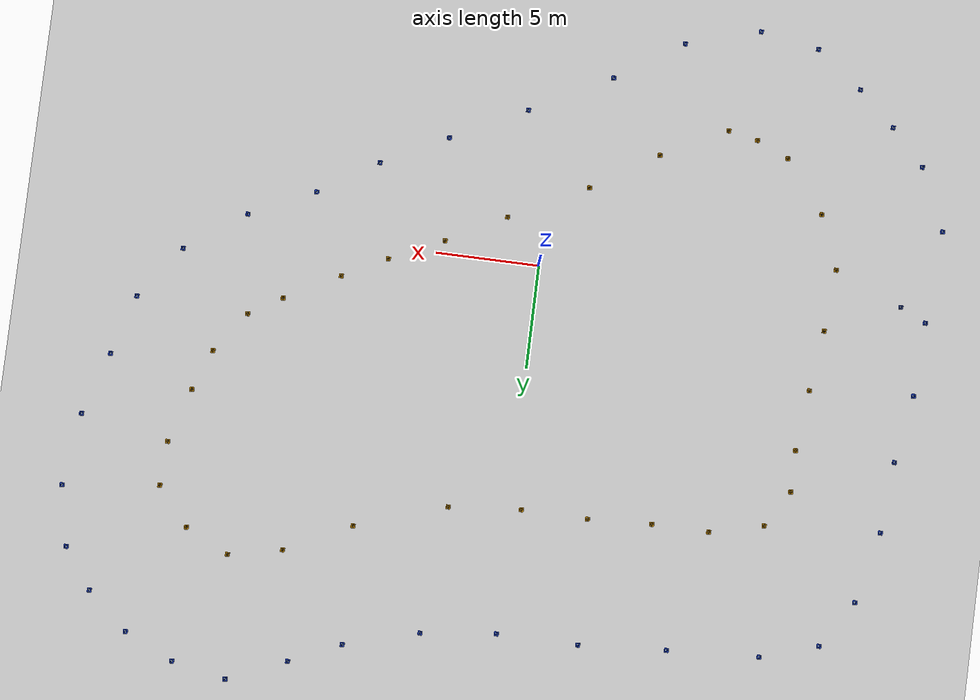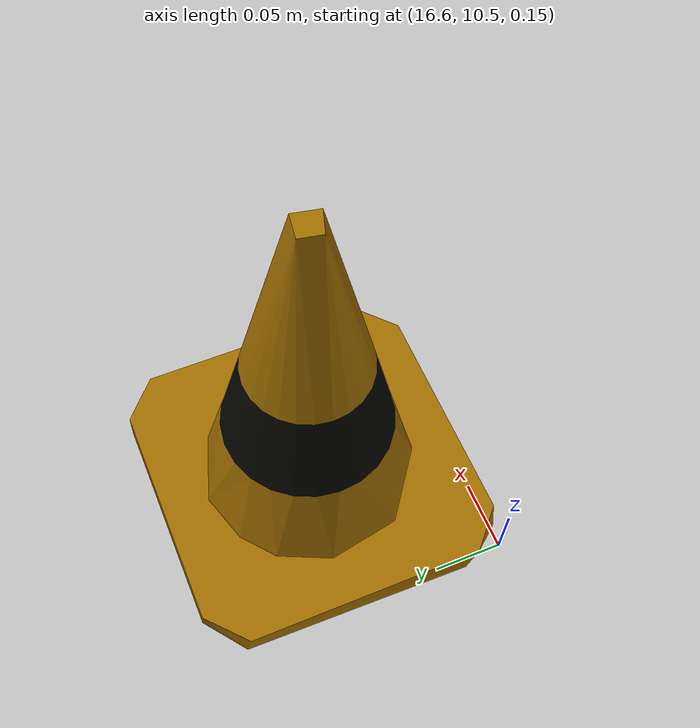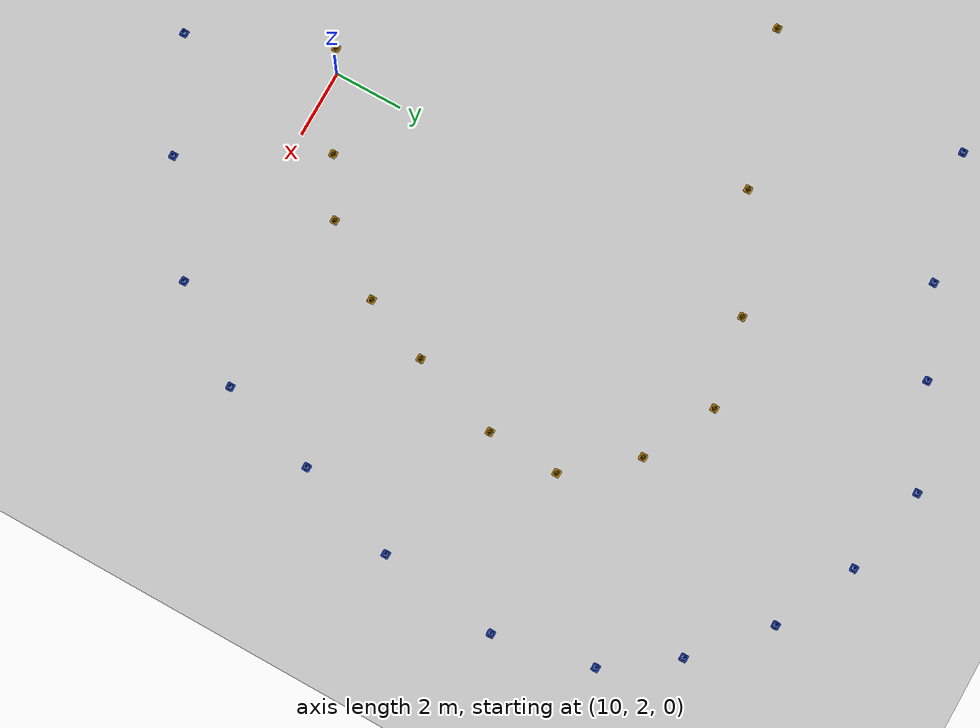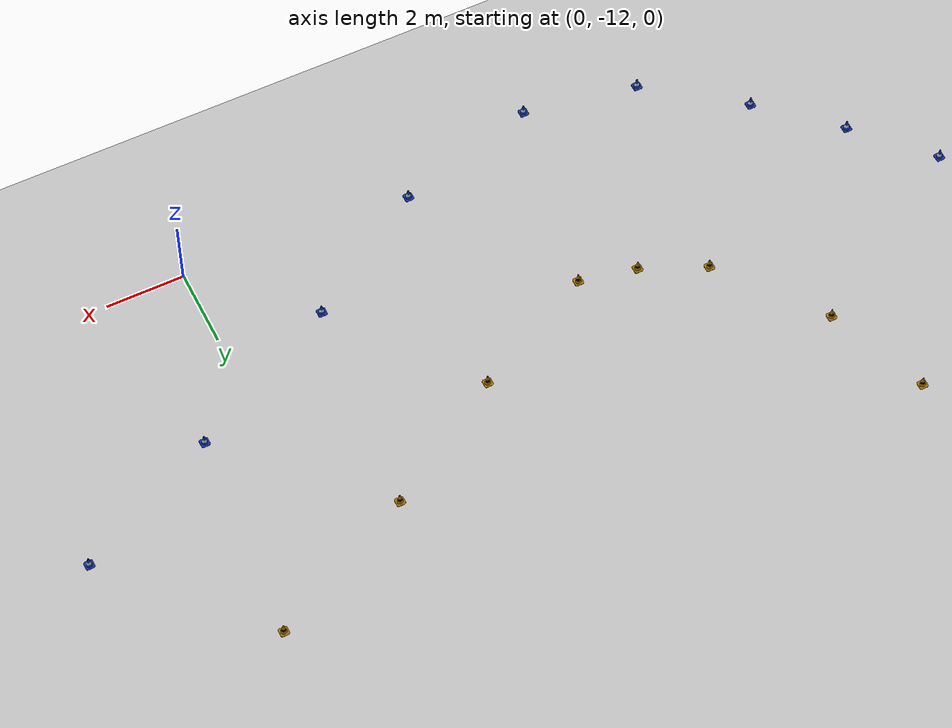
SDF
<sdf version="1.6">
 <world name="default">
  <scene>
   <sky><clouds><speed>3</speed></clouds></sky>
   <ambient>1 1 1 1</ambient>
   <shadows>0</shadows>
   <background>0.7 0.7 0.7 1</background>
  </scene>
  <light name="sun" type="directional">
   <pose>0 0 10 0 -0 0</pose>
   <diffuse>0.8 0.8 0.8 1</diffuse>
   <specular>0.1 0.1 0.1 1</specular>
   <attenuation>
    <range>1000</range>
    <constant>0.9</constant>
    <linear>0.01</linear>
    <quadratic>0.001</quadratic>
   </attenuation>
   <direction>-0.5 0.5 -1</direction>
  </light>
  <model name="ground_plane">
   <static>1</static>
   <link name="link">
    <collision name="collision">
     <geometry><plane><normal>0 0 1</normal><size>120 120</size></plane></geometry>
     <surface><friction><ode><mu>100</mu><mu2>50</mu2></ode></friction></surface>
    </collision>
    <visual name="visual">
     <cast_shadows>0</cast_shadows>
     <geometry><plane><normal>0 0 1</normal><size>120 120</size></plane></geometry>
     <material><script><uri>model://materials/gazebo.material</uri><name>Gazebo/Asphalt</name></script></material>
    </visual>
   </link>
  </model>
  <model name="small_track">
   <link name="link_0">
    <pose>-17.0129 9.72719 0.079001 0 -0 0</pose>
    <collision name="collision">
     <geometry><mesh><uri>model://eufs_description/meshes/cone_blue.dae</uri></mesh></geometry>
    </collision>
    <visual name="visual">
     <geometry><mesh><uri>model://eufs_description/meshes/cone_blue.dae</uri></mesh></geometry>
    </visual>
    <inertial>
     <inertia><ixx>1</ixx><ixy>0</ixy><ixz>0</ixz><iyy>1</iyy><iyz>0</iyz><izz>1</izz></inertia>
     <mass>1</mass>
    </inertial>
   </link>
   <link name="link_0_clone">
    <pose>-12.7541 12.8712 0.079001 0 -0 0</pose>
    <collision name="collision">
     <geometry><mesh><uri>model://eufs_description/meshes/cone_blue.dae</uri></mesh></geometry>
    </collision>
    <visual name="visual">
     <geometry><mesh><uri>model://eufs_description/meshes/cone_blue.dae</uri></mesh></geometry>
    </visual>
    <inertial>
     <inertia><ixx>1</ixx><ixy>0</ixy><ixz>0</ixz><iyy>1</iyy><iyz>0</iyz><izz>1</izz></inertia>
     <mass>1</mass>
    </inertial>
   </link>
   <link name="link_0_clone_0_clone">
    <pose>-12.2686 6.61784 0.070966 -0.001555 0.00019 -5.2e-05</pose>
    <collision name="collision">
     <geometry><mesh><uri>model://eufs_description/meshes/cone_yellow.dae</uri></mesh></geometry>
    </collision>
    <visual name="visual">
     <geometry><mesh><uri>model://eufs_description/meshes/cone_yellow.dae</uri></mesh></geometry>
    </visual>
    <inertial>
     <inertia><ixx>1</ixx><ixy>0</ixy><ixz>0</ixz><iyy>1</iyy><iyz>0</iyz><izz>1</izz></inertia>
     <mass>1</mass>
    </inertial>
   </link>
   <link name="link_0_clone_0_clone_clone">
    <pose>-9.65737 7.2378 0.083534 0.001019 -0.000437 -0.000128</pose>
    <collision name="collision">
     <geometry><mesh><uri>model://eufs_description/meshes/cone_yellow.dae</uri></mesh></geometry>
    </collision>
    <visual name="visual">
     <geometry><mesh><uri>model://eufs_description/meshes/cone_yellow.dae</uri></mesh></geometry>
    </visual>
    <inertial>
     <inertia><ixx>1</ixx><ixy>0</ixy><ixz>0</ixz><iyy>1</iyy><iyz>0</iyz><izz>1</izz></inertia>
     <mass>1</mass>
    </inertial>
   </link>
   <link name="link_0_clone_1">
    <pose>-8.31569 13.0924 0.079001 0 -0 0</pose>
    <collision name="collision">
     <geometry><mesh><uri>model://eufs_description/meshes/cone_blue.dae</uri></mesh></geometry>
    </collision>
    <visual name="visual">
     <geometry><mesh><uri>model://eufs_description/meshes/cone_blue.dae</uri></mesh></geometry>
    </visual>
    <inertial>
     <inertia><ixx>1</ixx><ixy>0</ixy><ixz>0</ixz><iyy>1</iyy><iyz>0</iyz><izz>1</izz></inertia>
     <mass>1</mass>
    </inertial>
   </link>
   <link name="link_0_clone_10">
    <pose>7.33516 9.03961 0.083556 0 -0 0</pose>
    <collision name="collision">
     <geometry><mesh><uri>model://eufs_description/meshes/cone_yellow.dae</uri></mesh></geometry>
    </collision>
    <visual name="visual">
     <geometry><mesh><uri>model://eufs_description/meshes/cone_yellow.dae</uri></mesh></geometry>
    </visual>
    <inertial>
     <inertia><ixx>1</ixx><ixy>0</ixy><ixz>0</ixz><iyy>1</iyy><iyz>0</iyz><izz>1</izz></inertia>
     <mass>1</mass>
    </inertial>
   </link>
   <link name="link_0_clone_11">
    <pose>9.62956 15.8379 0.084236 0 -0 0</pose>
    <collision name="collision">
     <geometry><mesh><uri>model://eufs_description/meshes/cone_blue.dae</uri></mesh></geometry>
    </collision>
    <visual name="visual">
     <geometry><mesh><uri>model://eufs_description/meshes/cone_blue.dae</uri></mesh></geometry>
    </visual>
    <inertial>
     <inertia><ixx>1</ixx><ixy>0</ixy><ixz>0</ixz><iyy>1</iyy><iyz>0</iyz><izz>1</izz></inertia>
     <mass>1</mass>
    </inertial>
   </link>
   <link name="link_0_clone_12">
    <pose>10.548 10.5892 0.085274 0 -0 0</pose>
    <collision name="collision">
     <geometry><mesh><uri>model://eufs_description/meshes/cone_yellow.dae</uri></mesh></geometry>
    </collision>
    <visual name="visual">
     <geometry><mesh><uri>model://eufs_description/meshes/cone_yellow.dae</uri></mesh></geometry>
    </visual>
    <inertial>
     <inertia><ixx>1</ixx><ixy>0</ixy><ixz>0</ixz><iyy>1</iyy><iyz>0</iyz><izz>1</izz></inertia>
     <mass>1</mass>
    </inertial>
   </link>
   <link name="link_0_clone_13">
    <pose>13.1479 11.1316 0.08476 0 -0 0</pose>
    <collision name="collision">
     <geometry><mesh><uri>model://eufs_description/meshes/cone_yellow.dae</uri></mesh></geometry>
    </collision>
    <visual name="visual">
     <geometry><mesh><uri>model://eufs_description/meshes/cone_yellow.dae</uri></mesh></geometry>
    </visual>
    <inertial>
     <inertia><ixx>1</ixx><ixy>0</ixy><ixz>0</ixz><iyy>1</iyy><iyz>0</iyz><izz>1</izz></inertia>
     <mass>1</mass>
    </inertial>
   </link>
   <link name="link_0_clone_14">
    <pose>12.492 17.0404 0.083705 0 -0 0</pose>
    <collision name="collision">
     <geometry><mesh><uri>model://eufs_description/meshes/cone_blue.dae</uri></mesh></geometry>
    </collision>
    <visual name="visual">
     <geometry><mesh><uri>model://eufs_description/meshes/cone_blue.dae</uri></mesh></geometry>
    </visual>
    <inertial>
     <inertia><ixx>1</ixx><ixy>0</ixy><ixz>0</ixz><iyy>1</iyy><iyz>0</iyz><izz>1</izz></inertia>
     <mass>1</mass>
    </inertial>
   </link>
   <link name="link_0_clone_15">
    <pose>15.1389 16.5025 0.082223 0 -0 0</pose>
    <collision name="collision">
     <geometry><mesh><uri>model://eufs_description/meshes/cone_blue.dae</uri></mesh></geometry>
    </collision>
    <visual name="visual">
     <geometry><mesh><uri>model://eufs_description/meshes/cone_blue.dae</uri></mesh></geometry>
    </visual>
    <inertial>
     <inertia><ixx>1</ixx><ixy>0</ixy><ixz>0</ixz><iyy>1</iyy><iyz>0</iyz><izz>1</izz></inertia>
     <mass>1</mass>
    </inertial>
   </link>
   <link name="link_0_clone_16">
    <pose>15.2725 10.0791 0.08035 0 -0 0</pose>
    <collision name="collision">
     <geometry><mesh><uri>model://eufs_description/meshes/cone_yellow.dae</uri></mesh></geometry>
    </collision>
    <visual name="visual">
     <geometry><mesh><uri>model://eufs_description/meshes/cone_yellow.dae</uri></mesh></geometry>
    </visual>
    <inertial>
     <inertia><ixx>1</ixx><ixy>0</ixy><ixz>0</ixz><iyy>1</iyy><iyz>0</iyz><izz>1</izz></inertia>
     <mass>1</mass>
    </inertial>
   </link>
   <link name="link_0_clone_17">
    <pose>19.5034 13.6361 0.079669 0 -0 0</pose>
    <collision name="collision">
     <geometry><mesh><uri>model://eufs_description/meshes/cone_blue.dae</uri></mesh></geometry>
    </collision>
    <visual name="visual">
     <geometry><mesh><uri>model://eufs_description/meshes/cone_blue.dae</uri></mesh></geometry>
    </visual>
    <inertial>
     <inertia><ixx>1</ixx><ixy>0</ixy><ixz>0</ixz><iyy>1</iyy><iyz>0</iyz><izz>1</izz></inertia>
     <mass>1</mass>
    </inertial>
   </link>
   <link name="link_0_clone_17_clone">
    <pose>20.8922 11.7012 0.056623 -0.001555 0.00019 -5.2e-05</pose>
    <collision name="collision">
     <geometry><mesh><uri>model://eufs_description/meshes/cone_blue.dae</uri></mesh></geometry>
    </collision>
    <visual name="visual">
     <geometry><mesh><uri>model://eufs_description/meshes/cone_blue.dae</uri></mesh></geometry>
    </visual>
    <inertial>
     <inertia><ixx>1</ixx><ixy>0</ixy><ixz>0</ixz><iyy>1</iyy><iyz>0</iyz><izz>1</izz></inertia>
     <mass>1</mass>
    </inertial>
   </link>
   <link name="link_0_clone_17_clone_0">
    <pose>17.5221 15.3812 0.082077 -0.001555 0.00019 -5.2e-05</pose>
    <collision name="collision">
     <geometry><mesh><uri>model://eufs_description/meshes/cone_blue.dae</uri></mesh></geometry>
    </collision>
    <visual name="visual">
     <geometry><mesh><uri>model://eufs_description/meshes/cone_blue.dae</uri></mesh></geometry>
    </visual>
    <inertial>
     <inertia><ixx>1</ixx><ixy>0</ixy><ixz>0</ixz><iyy>1</iyy><iyz>0</iyz><izz>1</izz></inertia>
     <mass>1</mass>
    </inertial>
   </link>
   <link name="link_0_clone_18">
    <pose>16.8037 8.23821 0.079433 0 -0 0</pose>
    <collision name="collision">
     <geometry><mesh><uri>model://eufs_description/meshes/cone_yellow.dae</uri></mesh></geometry>
    </collision>
    <visual name="visual">
     <geometry><mesh><uri>model://eufs_description/meshes/cone_yellow.dae</uri></mesh></geometry>
    </visual>
    <inertial>
     <inertia><ixx>1</ixx><ixy>0</ixy><ixz>0</ixz><iyy>1</iyy><iyz>0</iyz><izz>1</izz></inertia>
     <mass>1</mass>
    </inertial>
   </link>
   <link name="link_0_clone_19">
    <pose>21.4761 8.79574 0.079001 0 -0 0</pose>
    <collision name="collision">
     <geometry><mesh><uri>model://eufs_description/meshes/cone_blue.dae</uri></mesh></geometry>
    </collision>
    <visual name="visual">
     <geometry><mesh><uri>model://eufs_description/meshes/cone_blue.dae</uri></mesh></geometry>
    </visual>
    <inertial>
     <inertia><ixx>1</ixx><ixy>0</ixy><ixz>0</ixz><iyy>1</iyy><iyz>0</iyz><izz>1</izz></inertia>
     <mass>1</mass>
    </inertial>
   </link>
   <link name="link_0_clone_2">
    <pose>-6.90273 7.20128 0.080073 0 -0 0</pose>
    <collision name="collision">
     <geometry><mesh><uri>model://eufs_description/meshes/cone_yellow.dae</uri></mesh></geometry>
    </collision>
    <visual name="visual">
     <geometry><mesh><uri>model://eufs_description/meshes/cone_yellow.dae</uri></mesh></geometry>
    </visual>
    <inertial>
     <inertia><ixx>1</ixx><ixy>0</ixy><ixz>0</ixz><iyy>1</iyy><iyz>0</iyz><izz>1</izz></inertia>
     <mass>1</mass>
    </inertial>
   </link>
   <link name="link_0_clone_20">
    <pose>20.9992 5.27662 0.079001 0 -0 0</pose>
    <collision name="collision">
     <geometry><mesh><uri>model://eufs_description/meshes/cone_blue.dae</uri></mesh></geometry>
    </collision>
    <visual name="visual">
     <geometry><mesh><uri>model://eufs_description/meshes/cone_blue.dae</uri></mesh></geometry>
    </visual>
    <inertial>
     <inertia><ixx>1</ixx><ixy>0</ixy><ixz>0</ixz><iyy>1</iyy><iyz>0</iyz><izz>1</izz></inertia>
     <mass>1</mass>
    </inertial>
   </link>
   <link name="link_0_clone_21">
    <pose>16.7063 6.10772 0.079001 0 -0 0</pose>
    <collision name="collision">
     <geometry><mesh><uri>model://eufs_description/meshes/cone_yellow.dae</uri></mesh></geometry>
    </collision>
    <visual name="visual">
     <geometry><mesh><uri>model://eufs_description/meshes/cone_yellow.dae</uri></mesh></geometry>
    </visual>
    <inertial>
     <inertia><ixx>1</ixx><ixy>0</ixy><ixz>0</ixz><iyy>1</iyy><iyz>0</iyz><izz>1</izz></inertia>
     <mass>1</mass>
    </inertial>
   </link>
   <link name="link_0_clone_22">
    <pose>19.9925 2.24053 0.079001 0 -0 0</pose>
    <collision name="collision">
     <geometry><mesh><uri>model://eufs_description/meshes/cone_blue.dae</uri></mesh></geometry>
    </collision>
    <visual name="visual">
     <geometry><mesh><uri>model://eufs_description/meshes/cone_blue.dae</uri></mesh></geometry>
    </visual>
    <inertial>
     <inertia><ixx>1</ixx><ixy>0</ixy><ixz>0</ixz><iyy>1</iyy><iyz>0</iyz><izz>1</izz></inertia>
     <mass>1</mass>
    </inertial>
   </link>
   <link name="link_0_clone_23">
    <pose>15.876 3.47906 0.079001 0 -0 0</pose>
    <collision name="collision">
     <geometry><mesh><uri>model://eufs_description/meshes/cone_yellow.dae</uri></mesh></geometry>
    </collision>
    <visual name="visual">
     <geometry><mesh><uri>model://eufs_description/meshes/cone_yellow.dae</uri></mesh></geometry>
    </visual>
    <inertial>
     <inertia><ixx>1</ixx><ixy>0</ixy><ixz>0</ixz><iyy>1</iyy><iyz>0</iyz><izz>1</izz></inertia>
     <mass>1</mass>
    </inertial>
   </link>
   <link name="link_0_clone_24">
    <pose>15.106 1.5027 0.079001 0 -0 0</pose>
    <collision name="collision">
     <geometry><mesh><uri>model://eufs_description/meshes/cone_yellow.dae</uri></mesh></geometry>
    </collision>
    <visual name="visual">
     <geometry><mesh><uri>model://eufs_description/meshes/cone_yellow.dae</uri></mesh></geometry>
    </visual>
    <inertial>
     <inertia><ixx>1</ixx><ixy>0</ixy><ixz>0</ixz><iyy>1</iyy><iyz>0</iyz><izz>1</izz></inertia>
     <mass>1</mass>
    </inertial>
   </link>
   <link name="link_0_clone_25">
    <pose>19.0983 -0.671871 0.079001 0 -0 0</pose>
    <collision name="collision">
     <geometry><mesh><uri>model://eufs_description/meshes/cone_blue.dae</uri></mesh></geometry>
    </collision>
    <visual name="visual">
     <geometry><mesh><uri>model://eufs_description/meshes/cone_blue.dae</uri></mesh></geometry>
    </visual>
    <inertial>
     <inertia><ixx>1</ixx><ixy>0</ixy><ixz>0</ixz><iyy>1</iyy><iyz>0</iyz><izz>1</izz></inertia>
     <mass>1</mass>
    </inertial>
   </link>
   <link name="link_0_clone_26">
    <pose>13.6765 -0.472612 0.079001 0 -0 0</pose>
    <collision name="collision">
     <geometry><mesh><uri>model://eufs_description/meshes/cone_yellow.dae</uri></mesh></geometry>
    </collision>
    <visual name="visual">
     <geometry><mesh><uri>model://eufs_description/meshes/cone_yellow.dae</uri></mesh></geometry>
    </visual>
    <inertial>
     <inertia><ixx>1</ixx><ixy>0</ixy><ixz>0</ixz><iyy>1</iyy><iyz>0</iyz><izz>1</izz></inertia>
     <mass>1</mass>
    </inertial>
   </link>
   <link name="link_0_clone_27">
    <pose>17.1824 -3.23994 0.079001 0 -0 0</pose>
    <collision name="collision">
     <geometry><mesh><uri>model://eufs_description/meshes/cone_blue.dae</uri></mesh></geometry>
    </collision>
    <visual name="visual">
     <geometry><mesh><uri>model://eufs_description/meshes/cone_blue.dae</uri></mesh></geometry>
    </visual>
    <inertial>
     <inertia><ixx>1</ixx><ixy>0</ixy><ixz>0</ixz><iyy>1</iyy><iyz>0</iyz><izz>1</izz></inertia>
     <mass>1</mass>
    </inertial>
   </link>
   <link name="link_0_clone_28">
    <pose>9.41953 -2.84739 0.079001 0 -0 0</pose>
    <collision name="collision">
     <geometry><mesh><uri>model://eufs_description/meshes/cone_yellow.dae</uri></mesh></geometry>
    </collision>
    <visual name="visual">
     <geometry><mesh><uri>model://eufs_description/meshes/cone_yellow.dae</uri></mesh></geometry>
    </visual>
    <inertial>
     <inertia><ixx>1</ixx><ixy>0</ixy><ixz>0</ixz><iyy>1</iyy><iyz>0</iyz><izz>1</izz></inertia>
     <mass>1</mass>
    </inertial>
   </link>
   <link name="link_0_clone_29">
    <pose>11.114 -6.74408 0.079001 0 -0 0</pose>
    <collision name="collision">
     <geometry><mesh><uri>model://eufs_description/meshes/cone_blue.dae</uri></mesh></geometry>
    </collision>
    <visual name="visual">
     <geometry><mesh><uri>model://eufs_description/meshes/cone_blue.dae</uri></mesh></geometry>
    </visual>
    <inertial>
     <inertia><ixx>1</ixx><ixy>0</ixy><ixz>0</ixz><iyy>1</iyy><iyz>0</iyz><izz>1</izz></inertia>
     <mass>1</mass>
    </inertial>
   </link>
   <link name="link_0_clone_3">
    <pose>-4.06552 13.3637 0.079001 0 -0 0</pose>
    <collision name="collision">
     <geometry><mesh><uri>model://eufs_description/meshes/cone_blue.dae</uri></mesh></geometry>
    </collision>
    <visual name="visual">
     <geometry><mesh><uri>model://eufs_description/meshes/cone_blue.dae</uri></mesh></geometry>
    </visual>
    <inertial>
     <inertia><ixx>1</ixx><ixy>0</ixy><ixz>0</ixz><iyy>1</iyy><iyz>0</iyz><izz>1</izz></inertia>
     <mass>1</mass>
    </inertial>
   </link>
   <link name="link_0_clone_30">
    <pose>12.0732 -1.43122 0.079001 0 -0 0</pose>
    <collision name="collision">
     <geometry><mesh><uri>model://eufs_description/meshes/cone_yellow.dae</uri></mesh></geometry>
    </collision>
    <visual name="visual">
     <geometry><mesh><uri>model://eufs_description/meshes/cone_yellow.dae</uri></mesh></geometry>
    </visual>
    <inertial>
     <inertia><ixx>1</ixx><ixy>0</ixy><ixz>0</ixz><iyy>1</iyy><iyz>0</iyz><izz>1</izz></inertia>
     <mass>1</mass>
    </inertial>
   </link>
   <link name="link_0_clone_31">
    <pose>14.2831 -5.26437 0.079001 0 -0 0</pose>
    <collision name="collision">
     <geometry><mesh><uri>model://eufs_description/meshes/cone_blue.dae</uri></mesh></geometry>
    </collision>
    <visual name="visual">
     <geometry><mesh><uri>model://eufs_description/meshes/cone_blue.dae</uri></mesh></geometry>
    </visual>
    <inertial>
     <inertia><ixx>1</ixx><ixy>0</ixy><ixz>0</ixz><iyy>1</iyy><iyz>0</iyz><izz>1</izz></inertia>
     <mass>1</mass>
    </inertial>
   </link>
   <link name="link_0_clone_32">
    <pose>7.26282 -3.9408 0.079001 0 -0 0</pose>
    <collision name="collision">
     <geometry><mesh><uri>model://eufs_description/meshes/cone_yellow.dae</uri></mesh></geometry>
    </collision>
    <visual name="visual">
     <geometry><mesh><uri>model://eufs_description/meshes/cone_yellow.dae</uri></mesh></geometry>
    </visual>
    <inertial>
     <inertia><ixx>1</ixx><ixy>0</ixy><ixz>0</ixz><iyy>1</iyy><iyz>0</iyz><izz>1</izz></inertia>
     <mass>1</mass>
    </inertial>
   </link>
   <link name="link_0_clone_33">
    <pose>8.25363 -8.53889 0.079001 0 -0 0</pose>
    <collision name="collision">
     <geometry><mesh><uri>model://eufs_description/meshes/cone_blue.dae</uri></mesh></geometry>
    </collision>
    <visual name="visual">
     <geometry><mesh><uri>model://eufs_description/meshes/cone_blue.dae</uri></mesh></geometry>
    </visual>
    <inertial>
     <inertia><ixx>1</ixx><ixy>0</ixy><ixz>0</ixz><iyy>1</iyy><iyz>0</iyz><izz>1</izz></inertia>
     <mass>1</mass>
    </inertial>
   </link>
   <link name="link_0_clone_34">
    <pose>4.65159 -5.15509 0.079001 0 -0 0</pose>
    <collision name="collision">
     <geometry><mesh><uri>model://eufs_description/meshes/cone_yellow.dae</uri></mesh></geometry>
    </collision>
    <visual name="visual">
     <geometry><mesh><uri>model://eufs_description/meshes/cone_yellow.dae</uri></mesh></geometry>
    </visual>
    <inertial>
     <inertia><ixx>1</ixx><ixy>0</ixy><ixz>0</ixz><iyy>1</iyy><iyz>0</iyz><izz>1</izz></inertia>
     <mass>1</mass>
    </inertial>
   </link>
   <link name="link_0_clone_35">
    <pose>5.06185 -10.1551 0.079001 0 -0 0</pose>
    <collision name="collision">
     <geometry><mesh><uri>model://eufs_description/meshes/cone_blue.dae</uri></mesh></geometry>
    </collision>
    <visual name="visual">
     <geometry><mesh><uri>model://eufs_description/meshes/cone_blue.dae</uri></mesh></geometry>
    </visual>
    <inertial>
     <inertia><ixx>1</ixx><ixy>0</ixy><ixz>0</ixz><iyy>1</iyy><iyz>0</iyz><izz>1</izz></inertia>
     <mass>1</mass>
    </inertial>
   </link>
   <link name="link_0_clone_36">
    <pose>1.78774 -6.66723 0.079001 0 -0 0</pose>
    <collision name="collision">
     <geometry><mesh><uri>model://eufs_description/meshes/cone_yellow.dae</uri></mesh></geometry>
    </collision>
    <visual name="visual">
     <geometry><mesh><uri>model://eufs_description/meshes/cone_yellow.dae</uri></mesh></geometry>
    </visual>
    <inertial>
     <inertia><ixx>1</ixx><ixy>0</ixy><ixz>0</ixz><iyy>1</iyy><iyz>0</iyz><izz>1</izz></inertia>
     <mass>1</mass>
    </inertial>
   </link>
   <link name="link_0_clone_37">
    <pose>1.42086 -11.9634 0.079001 0 -0 0</pose>
    <collision name="collision">
     <geometry><mesh><uri>model://eufs_description/meshes/cone_blue.dae</uri></mesh></geometry>
    </collision>
    <visual name="visual">
     <geometry><mesh><uri>model://eufs_description/meshes/cone_blue.dae</uri></mesh></geometry>
    </visual>
    <inertial>
     <inertia><ixx>1</ixx><ixy>0</ixy><ixz>0</ixz><iyy>1</iyy><iyz>0</iyz><izz>1</izz></inertia>
     <mass>1</mass>
    </inertial>
   </link>
   <link name="link_0_clone_38">
    <pose>-1.97969 -8.56329 0.079001 0 -0 0</pose>
    <collision name="collision">
     <geometry><mesh><uri>model://eufs_description/meshes/cone_yellow.dae</uri></mesh></geometry>
    </collision>
    <visual name="visual">
     <geometry><mesh><uri>model://eufs_description/meshes/cone_yellow.dae</uri></mesh></geometry>
    </visual>
    <inertial>
     <inertia><ixx>1</ixx><ixy>0</ixy><ixz>0</ixz><iyy>1</iyy><iyz>0</iyz><izz>1</izz></inertia>
     <mass>1</mass>
    </inertial>
   </link>
   <link name="link_0_clone_39">
    <pose>-2.4975 -14.0305 0.079001 0 -0 0</pose>
    <collision name="collision">
     <geometry><mesh><uri>model://eufs_description/meshes/cone_blue.dae</uri></mesh></geometry>
    </collision>
    <visual name="visual">
     <geometry><mesh><uri>model://eufs_description/meshes/cone_blue.dae</uri></mesh></geometry>
    </visual>
    <inertial>
     <inertia><ixx>1</ixx><ixy>0</ixy><ixz>0</ixz><iyy>1</iyy><iyz>0</iyz><izz>1</izz></inertia>
     <mass>1</mass>
    </inertial>
   </link>
   <link name="link_0_clone_4">
    <pose>-3.80615 7.33616 0.079001 0 -0 0</pose>
    <collision name="collision">
     <geometry><mesh><uri>model://eufs_description/meshes/cone_yellow.dae</uri></mesh></geometry>
    </collision>
    <visual name="visual">
     <geometry><mesh><uri>model://eufs_description/meshes/cone_yellow.dae</uri></mesh></geometry>
    </visual>
    <inertial>
     <inertia><ixx>1</ixx><ixy>0</ixy><ixz>0</ixz><iyy>1</iyy><iyz>0</iyz><izz>1</izz></inertia>
     <mass>1</mass>
    </inertial>
   </link>
   <link name="link_0_clone_40">
    <pose>-5.18123 -10.5555 0.079001 0 -0 0</pose>
    <collision name="collision">
     <geometry><mesh><uri>model://eufs_description/meshes/cone_yellow.dae</uri></mesh></geometry>
    </collision>
    <visual name="visual">
     <geometry><mesh><uri>model://eufs_description/meshes/cone_yellow.dae</uri></mesh></geometry>
    </visual>
    <inertial>
     <inertia><ixx>1</ixx><ixy>0</ixy><ixz>0</ixz><iyy>1</iyy><iyz>0</iyz><izz>1</izz></inertia>
     <mass>1</mass>
    </inertial>
   </link>
   <link name="link_0_clone_41">
    <pose>-5.74864 -16.1217 0.079001 0 -0 0</pose>
    <collision name="collision">
     <geometry><mesh><uri>model://eufs_description/meshes/cone_blue.dae</uri></mesh></geometry>
    </collision>
    <visual name="visual">
     <geometry><mesh><uri>model://eufs_description/meshes/cone_blue.dae</uri></mesh></geometry>
    </visual>
    <inertial>
     <inertia><ixx>1</ixx><ixy>0</ixy><ixz>0</ixz><iyy>1</iyy><iyz>0</iyz><izz>1</izz></inertia>
     <mass>1</mass>
    </inertial>
   </link>
   <link name="link_0_clone_42">
    <pose>-8.34841 -12.1551 0.079001 0 -0 0</pose>
    <collision name="collision">
     <geometry><mesh><uri>model://eufs_description/meshes/cone_yellow.dae</uri></mesh></geometry>
    </collision>
    <visual name="visual">
     <geometry><mesh><uri>model://eufs_description/meshes/cone_yellow.dae</uri></mesh></geometry>
    </visual>
    <inertial>
     <inertia><ixx>1</ixx><ixy>0</ixy><ixz>0</ixz><iyy>1</iyy><iyz>0</iyz><izz>1</izz></inertia>
     <mass>1</mass>
    </inertial>
   </link>
   <link name="link_0_clone_43">
    <pose>-9.34841 -17.1551 0.079001 0 -0 0</pose>
    <collision name="collision">
     <geometry><mesh><uri>model://eufs_description/meshes/cone_blue.dae</uri></mesh></geometry>
    </collision>
    <visual name="visual">
     <geometry><mesh><uri>model://eufs_description/meshes/cone_blue.dae</uri></mesh></geometry>
    </visual>
    <inertial>
     <inertia><ixx>1</ixx><ixy>0</ixy><ixz>0</ixz><iyy>1</iyy><iyz>0</iyz><izz>1</izz></inertia>
     <mass>1</mass>
    </inertial>
   </link>
   <link name="link_0_clone_44">
    <pose>-9.78487 -11.8592 0.079001 0 -0 0</pose>
    <collision name="collision">
     <geometry><mesh><uri>model://eufs_description/meshes/cone_yellow.dae</uri></mesh></geometry>
    </collision>
    <visual name="visual">
     <geometry><mesh><uri>model://eufs_description/meshes/cone_yellow.dae</uri></mesh></geometry>
    </visual>
    <inertial>
     <inertia><ixx>1</ixx><ixy>0</ixy><ixz>0</ixz><iyy>1</iyy><iyz>0</iyz><izz>1</izz></inertia>
     <mass>1</mass>
    </inertial>
   </link>
   <link name="link_0_clone_45">
    <pose>-12.2114 -16.6459 0.079001 0 -0 0</pose>
    <collision name="collision">
     <geometry><mesh><uri>model://eufs_description/meshes/cone_blue.dae</uri></mesh></geometry>
    </collision>
    <visual name="visual">
     <geometry><mesh><uri>model://eufs_description/meshes/cone_blue.dae</uri></mesh></geometry>
    </visual>
    <inertial>
     <inertia><ixx>1</ixx><ixy>0</ixy><ixz>0</ixz><iyy>1</iyy><iyz>0</iyz><izz>1</izz></inertia>
     <mass>1</mass>
    </inertial>
   </link>
   <link name="link_0_clone_46">
    <pose>-11.3484 -11.1551 0.079001 0 -0 0</pose>
    <collision name="collision">
     <geometry><mesh><uri>model://eufs_description/meshes/cone_yellow.dae</uri></mesh></geometry>
    </collision>
    <visual name="visual">
     <geometry><mesh><uri>model://eufs_description/meshes/cone_yellow.dae</uri></mesh></geometry>
    </visual>
    <inertial>
     <inertia><ixx>1</ixx><ixy>0</ixy><ixz>0</ixz><iyy>1</iyy><iyz>0</iyz><izz>1</izz></inertia>
     <mass>1</mass>
    </inertial>
   </link>
   <link name="link_0_clone_47">
    <pose>-14.4625 -14.9249 0.079001 0 -0 0</pose>
    <collision name="collision">
     <geometry><mesh><uri>model://eufs_description/meshes/cone_blue.dae</uri></mesh></geometry>
    </collision>
    <visual name="visual">
     <geometry><mesh><uri>model://eufs_description/meshes/cone_blue.dae</uri></mesh></geometry>
    </visual>
    <inertial>
     <inertia><ixx>1</ixx><ixy>0</ixy><ixz>0</ixz><iyy>1</iyy><iyz>0</iyz><izz>1</izz></inertia>
     <mass>1</mass>
    </inertial>
   </link>
   <link name="link_0_clone_48">
    <pose>-16.2427 -13.276 0.079001 0 -0 0</pose>
    <collision name="collision">
     <geometry><mesh><uri>model://eufs_description/meshes/cone_blue.dae</uri></mesh></geometry>
    </collision>
    <visual name="visual">
     <geometry><mesh><uri>model://eufs_description/meshes/cone_blue.dae</uri></mesh></geometry>
    </visual>
    <inertial>
     <inertia><ixx>1</ixx><ixy>0</ixy><ixz>0</ixz><iyy>1</iyy><iyz>0</iyz><izz>1</izz></inertia>
     <mass>1</mass>
    </inertial>
   </link>
   <link name="link_0_clone_49">
    <pose>-13.2946 -8.64709 0.079001 0 -0 0</pose>
    <collision name="collision">
     <geometry><mesh><uri>model://eufs_description/meshes/cone_yellow.dae</uri></mesh></geometry>
    </collision>
    <visual name="visual">
     <geometry><mesh><uri>model://eufs_description/meshes/cone_yellow.dae</uri></mesh></geometry>
    </visual>
    <inertial>
     <inertia><ixx>1</ixx><ixy>0</ixy><ixz>0</ixz><iyy>1</iyy><iyz>0</iyz><izz>1</izz></inertia>
     <mass>1</mass>
    </inertial>
   </link>
   <link name="link_0_clone_5">
    <pose>-0.131239 13.3125 0.079001 0 -0 0</pose>
    <collision name="collision">
     <geometry><mesh><uri>model://eufs_description/meshes/cone_blue.dae</uri></mesh></geometry>
    </collision>
    <visual name="visual">
     <geometry><mesh><uri>model://eufs_description/meshes/cone_blue.dae</uri></mesh></geometry>
    </visual>
    <inertial>
     <inertia><ixx>1</ixx><ixy>0</ixy><ixz>0</ixz><iyy>1</iyy><iyz>0</iyz><izz>1</izz></inertia>
     <mass>1</mass>
    </inertial>
   </link>
   <link name="link_0_clone_50">
    <pose>-17.8615 -11.5349 0.079001 0 -0 0</pose>
    <collision name="collision">
     <geometry><mesh><uri>model://eufs_description/meshes/cone_blue.dae</uri></mesh></geometry>
    </collision>
    <visual name="visual">
     <geometry><mesh><uri>model://eufs_description/meshes/cone_blue.dae</uri></mesh></geometry>
    </visual>
    <inertial>
     <inertia><ixx>1</ixx><ixy>0</ixy><ixz>0</ixz><iyy>1</iyy><iyz>0</iyz><izz>1</izz></inertia>
     <mass>1</mass>
    </inertial>
   </link>
   <link name="link_0_clone_51">
    <pose>-14.2998 -6.05581 0.079001 0 -0 0</pose>
    <collision name="collision">
     <geometry><mesh><uri>model://eufs_description/meshes/cone_yellow.dae</uri></mesh></geometry>
    </collision>
    <visual name="visual">
     <geometry><mesh><uri>model://eufs_description/meshes/cone_yellow.dae</uri></mesh></geometry>
    </visual>
    <inertial>
     <inertia><ixx>1</ixx><ixy>0</ixy><ixz>0</ixz><iyy>1</iyy><iyz>0</iyz><izz>1</izz></inertia>
     <mass>1</mass>
    </inertial>
   </link>
   <link name="link_0_clone_52">
    <pose>-19.1945 -8.52656 0.079001 0 -0 0</pose>
    <collision name="collision">
     <geometry><mesh><uri>model://eufs_description/meshes/cone_blue.dae</uri></mesh></geometry>
    </collision>
    <visual name="visual">
     <geometry><mesh><uri>model://eufs_description/meshes/cone_blue.dae</uri></mesh></geometry>
    </visual>
    <inertial>
     <inertia><ixx>1</ixx><ixy>0</ixy><ixz>0</ixz><iyy>1</iyy><iyz>0</iyz><izz>1</izz></inertia>
     <mass>1</mass>
    </inertial>
   </link>
   <link name="link_0_clone_53">
    <pose>-18.9382 -5.15509 -4.97705 0 -0 0</pose>
    <collision name="collision">
     <geometry><mesh><uri>model://eufs_description/meshes/cone_blue.dae</uri></mesh></geometry>
    </collision>
    <visual name="visual">
     <geometry><mesh><uri>model://eufs_description/meshes/cone_blue.dae</uri></mesh></geometry>
    </visual>
    <inertial>
     <inertia><ixx>1</ixx><ixy>0</ixy><ixz>0</ixz><iyy>1</iyy><iyz>0</iyz><izz>1</izz></inertia>
     <mass>1</mass>
    </inertial>
   </link>
   <link name="link_0_clone_54">
    <pose>-14.0528 -3.05427 0.079001 0 -0 0</pose>
    <collision name="collision">
     <geometry><mesh><uri>model://eufs_description/meshes/cone_yellow.dae</uri></mesh></geometry>
    </collision>
    <visual name="visual">
     <geometry><mesh><uri>model://eufs_description/meshes/cone_yellow.dae</uri></mesh></geometry>
    </visual>
    <inertial>
     <inertia><ixx>1</ixx><ixy>0</ixy><ixz>0</ixz><iyy>1</iyy><iyz>0</iyz><izz>1</izz></inertia>
     <mass>1</mass>
    </inertial>
   </link>
   <link name="link_0_clone_55">
    <pose>-18.8625 -4.02997 0.079001 0 -0 0</pose>
    <collision name="collision">
     <geometry><mesh><uri>model://eufs_description/meshes/cone_blue.dae</uri></mesh></geometry>
    </collision>
    <visual name="visual">
     <geometry><mesh><uri>model://eufs_description/meshes/cone_blue.dae</uri></mesh></geometry>
    </visual>
    <inertial>
     <inertia><ixx>1</ixx><ixy>0</ixy><ixz>0</ixz><iyy>1</iyy><iyz>0</iyz><izz>1</izz></inertia>
     <mass>1</mass>
    </inertial>
   </link>
   <link name="link_0_clone_56">
    <pose>-18.6872 -0.45783 0.079001 0 -0 0</pose>
    <collision name="collision">
     <geometry><mesh><uri>model://eufs_description/meshes/cone_blue.dae</uri></mesh></geometry>
    </collision>
    <visual name="visual">
     <geometry><mesh><uri>model://eufs_description/meshes/cone_blue.dae</uri></mesh></geometry>
    </visual>
    <inertial>
     <inertia><ixx>1</ixx><ixy>0</ixy><ixz>0</ixz><iyy>1</iyy><iyz>0</iyz><izz>1</izz></inertia>
     <mass>1</mass>
    </inertial>
   </link>
   <link name="link_0_clone_57">
    <pose>-13.6807 -0.101053 0.079001 0 -0 0</pose>
    <collision name="collision">
     <geometry><mesh><uri>model://eufs_description/meshes/cone_yellow.dae</uri></mesh></geometry>
    </collision>
    <visual name="visual">
     <geometry><mesh><uri>model://eufs_description/meshes/cone_yellow.dae</uri></mesh></geometry>
    </visual>
    <inertial>
     <inertia><ixx>1</ixx><ixy>0</ixy><ixz>0</ixz><iyy>1</iyy><iyz>0</iyz><izz>1</izz></inertia>
     <mass>1</mass>
    </inertial>
   </link>
   <link name="link_0_clone_58">
    <pose>-18.1384 2.83132 0.079001 0 -0 0</pose>
    <collision name="collision">
     <geometry><mesh><uri>model://eufs_description/meshes/cone_blue.dae</uri></mesh></geometry>
    </collision>
    <visual name="visual">
     <geometry><mesh><uri>model://eufs_description/meshes/cone_blue.dae</uri></mesh></geometry>
    </visual>
    <inertial>
     <inertia><ixx>1</ixx><ixy>0</ixy><ixz>0</ixz><iyy>1</iyy><iyz>0</iyz><izz>1</izz></inertia>
     <mass>1</mass>
    </inertial>
   </link>
   <link name="link_0_clone_59">
    <pose>-13.3484 2.84491 0.079001 0 -0 0</pose>
    <collision name="collision">
     <geometry><mesh><uri>model://eufs_description/meshes/cone_yellow.dae</uri></mesh></geometry>
    </collision>
    <visual name="visual">
     <geometry><mesh><uri>model://eufs_description/meshes/cone_yellow.dae</uri></mesh></geometry>
    </visual>
    <inertial>
     <inertia><ixx>1</ixx><ixy>0</ixy><ixz>0</ixz><iyy>1</iyy><iyz>0</iyz><izz>1</izz></inertia>
     <mass>1</mass>
    </inertial>
   </link>
   <link name="link_0_clone_6">
    <pose>-0.595997 7.27843 0.079001 0 -0 0</pose>
    <collision name="collision">
     <geometry><mesh><uri>model://eufs_description/meshes/cone_yellow.dae</uri></mesh></geometry>
    </collision>
    <visual name="visual">
     <geometry><mesh><uri>model://eufs_description/meshes/cone_yellow.dae</uri></mesh></geometry>
    </visual>
    <inertial>
     <inertia><ixx>1</ixx><ixy>0</ixy><ixz>0</ixz><iyy>1</iyy><iyz>0</iyz><izz>1</izz></inertia>
     <mass>1</mass>
    </inertial>
   </link>
   <link name="link_0_clone_60">
    <pose>-17.8432 6.27091 0.079001 0 -0 0</pose>
    <collision name="collision">
     <geometry><mesh><uri>model://eufs_description/meshes/cone_blue.dae</uri></mesh></geometry>
    </collision>
    <visual name="visual">
     <geometry><mesh><uri>model://eufs_description/meshes/cone_blue.dae</uri></mesh></geometry>
    </visual>
    <inertial>
     <inertia><ixx>1</ixx><ixy>0</ixy><ixz>0</ixz><iyy>1</iyy><iyz>0</iyz><izz>1</izz></inertia>
     <mass>1</mass>
    </inertial>
   </link>
   <link name="link_0_clone_61">
    <pose>-13.3484 4.84491 0.079001 0 -0 0</pose>
    <collision name="collision">
     <geometry><mesh><uri>model://eufs_description/meshes/cone_yellow.dae</uri></mesh></geometry>
    </collision>
    <visual name="visual">
     <geometry><mesh><uri>model://eufs_description/meshes/cone_yellow.dae</uri></mesh></geometry>
    </visual>
    <inertial>
     <inertia><ixx>1</ixx><ixy>0</ixy><ixz>0</ixz><iyy>1</iyy><iyz>0</iyz><izz>1</izz></inertia>
     <mass>1</mass>
    </inertial>
   </link>
   <link name="link_0_clone_62">
    <pose>-15.5443 12.0063 0.063291 -0.001555 0.00019 -5.2e-05</pose>
    <collision name="collision">
     <geometry><mesh><uri>model://eufs_description/meshes/cone_blue.dae</uri></mesh></geometry>
    </collision>
    <visual name="visual">
     <geometry><mesh><uri>model://eufs_description/meshes/cone_blue.dae</uri></mesh></geometry>
    </visual>
    <inertial>
     <inertia><ixx>1</ixx><ixy>0</ixy><ixz>0</ixz><iyy>1</iyy><iyz>0</iyz><izz>1</izz></inertia>
     <mass>1</mass>
    </inertial>
   </link>
   <link name="link_0_clone_7">
    <pose>3.50416 13.7245 0.080395 0 -0 0</pose>
    <collision name="collision">
     <geometry><mesh><uri>model://eufs_description/meshes/cone_blue.dae</uri></mesh></geometry>
    </collision>
    <visual name="visual">
     <geometry><mesh><uri>model://eufs_description/meshes/cone_blue.dae</uri></mesh></geometry>
    </visual>
    <inertial>
     <inertia><ixx>1</ixx><ixy>0</ixy><ixz>0</ixz><iyy>1</iyy><iyz>0</iyz><izz>1</izz></inertia>
     <mass>1</mass>
    </inertial>
   </link>
   <link name="link_0_clone_8">
    <pose>2.90884 7.57594 0.07997 0 -0 0</pose>
    <collision name="collision">
     <geometry><mesh><uri>model://eufs_description/meshes/cone_yellow.dae</uri></mesh></geometry>
    </collision>
    <visual name="visual">
     <geometry><mesh><uri>model://eufs_description/meshes/cone_yellow.dae</uri></mesh></geometry>
    </visual>
    <inertial>
     <inertia><ixx>1</ixx><ixy>0</ixy><ixz>0</ixz><iyy>1</iyy><iyz>0</iyz><izz>1</izz></inertia>
     <mass>1</mass>
    </inertial>
   </link>
   <link name="link_0_clone_9">
    <pose>7.13676 14.727 0.083062 0 -0 0</pose>
    <collision name="collision">
     <geometry><mesh><uri>model://eufs_description/meshes/cone_blue.dae</uri></mesh></geometry>
    </collision>
    <visual name="visual">
     <geometry><mesh><uri>model://eufs_description/meshes/cone_blue.dae</uri></mesh></geometry>
    </visual>
    <inertial>
     <inertia><ixx>1</ixx><ixy>0</ixy><ixz>0</ixz><iyy>1</iyy><iyz>0</iyz><izz>1</izz></inertia>
     <mass>1</mass>
    </inertial>
   </link>
   <static>0</static>
   <pose>-6e-05 4.49991 0.072708 -1e-06 -1e-06 -6e-06</pose>
  </model>
  <gravity>0 0 -9.8</gravity>
  <magnetic_field>6e-06 2.3e-05 -4.2e-05</magnetic_field>
  <atmosphere type="adiabatic"/>
  <physics name="default_physics" default="0" type="ode">
   <max_step_size>0.001</max_step_size>
   <real_time_factor>1</real_time_factor>
   <real_time_update_rate>1000</real_time_update_rate>
  </physics>
  <spherical_coordinates>
   <surface_model>EARTH_WGS84</surface_model>
   <latitude_deg>0</latitude_deg>
   <longitude_deg>0</longitude_deg>
   <elevation>0</elevation>
   <heading_deg>0</heading_deg>
  </spherical_coordinates>
 </world>
</sdf>
